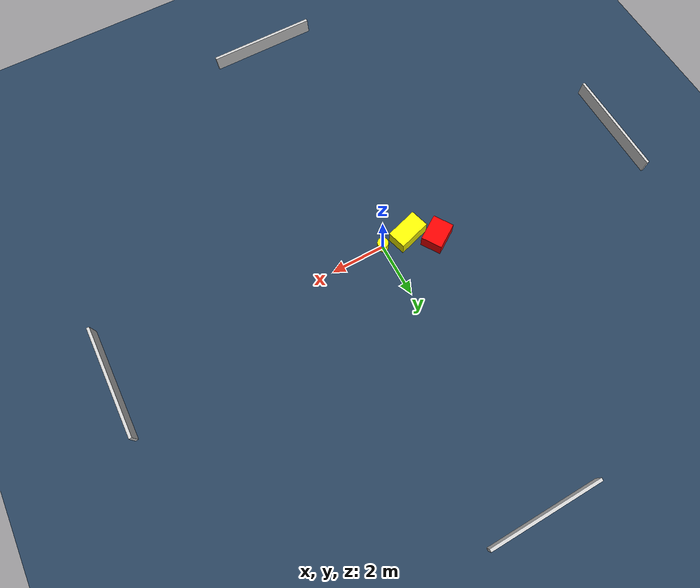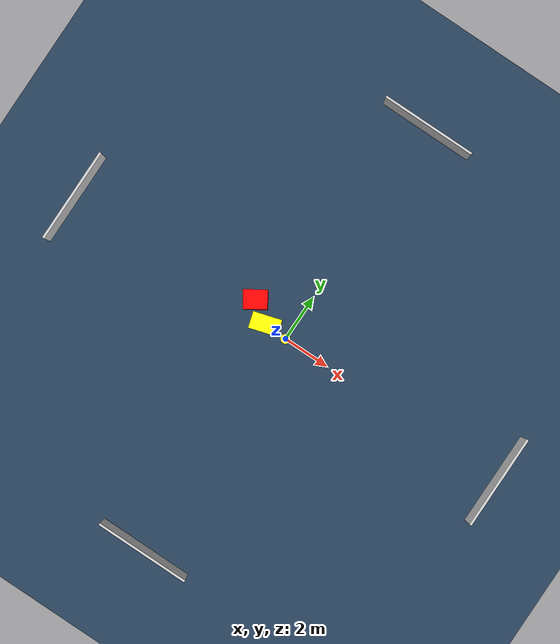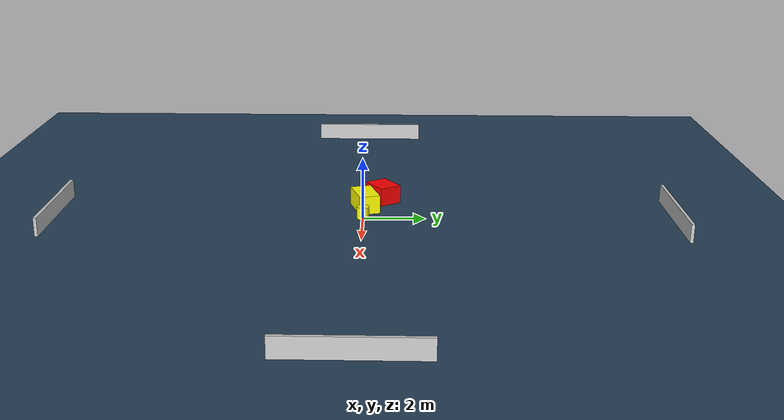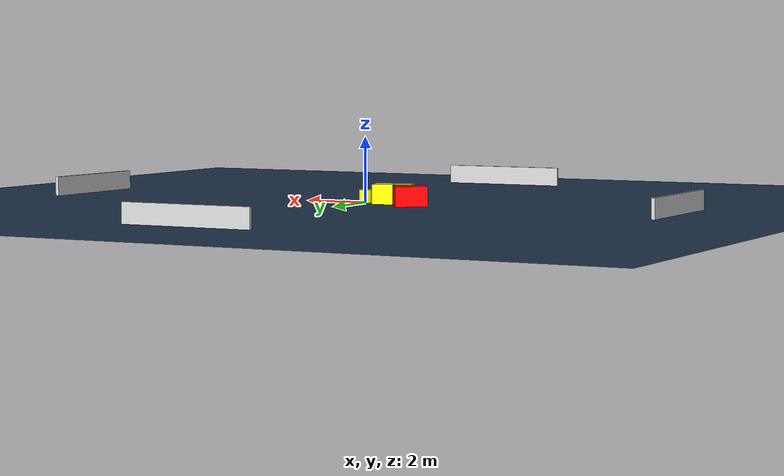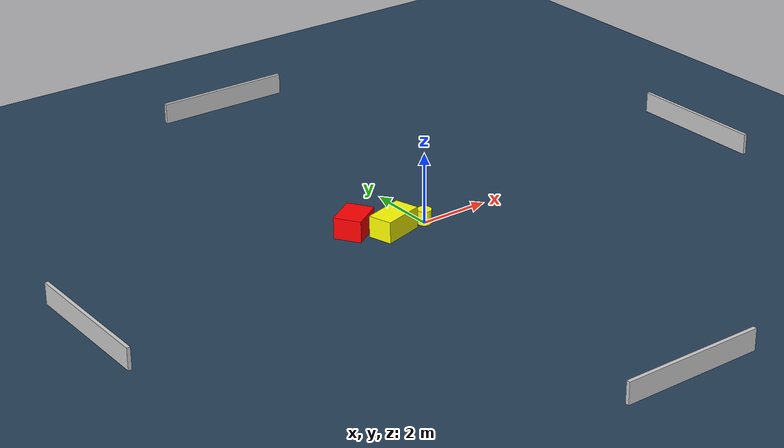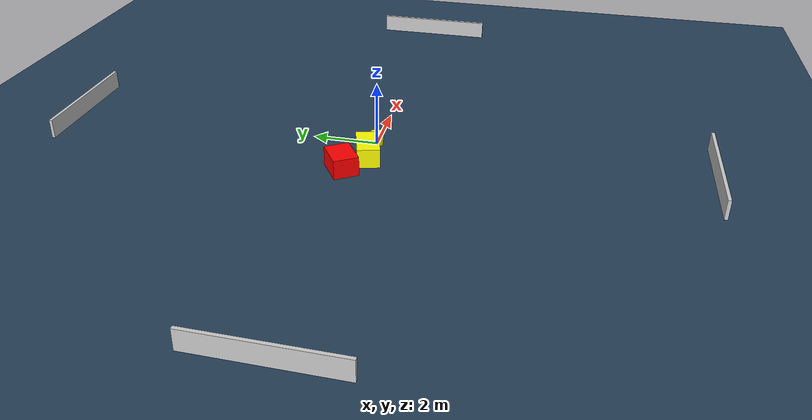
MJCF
<?xml version="1.0" ?>
<mujoco model="generated_environment">
  <option timestep="0.01" integrator="RK4" cone="elliptic"/>
  <default>
    <geom density="1"/>
  </default>
  <asset>
    <texture builtin="gradient" height="3072" name="skybox" rgb1="0.3 0.5 0.7" rgb2="0 0 0" type="skybox" width="512"/>
    <texture builtin="checker" height="300" name="groundplane" rgb1="0.2 0.3 0.4" rgb2="0.1 0.2 0.3" type="2d" width="300"/>
    <material name="groundplane" reflectance="0.2" texrepeat="5 5" texture="groundplane"/>
  </asset>
  <worldbody>
    <light dir="0 0 -1" directional="true" pos="0 0 1.5"/>
    <geom condim="3" friction="0.5 0.005 0.001" material="groundplane" name="floor" pos="0 0 0" size="0 0 0.05" type="plane"/>
    <body name="walls">
      <geom name="wall_1" condim="4" pos="-10.0 0.0 0.3" rgba="0.800000011920929 0.800000011920929 0.800000011920929 1.0" size="0.05 2.0 0.3" type="box"/>
      <geom name="wall_2" condim="4" pos="10.0 0.0 0.3" rgba="0.800000011920929 0.800000011920929 0.800000011920929 1.0" size="0.05 2.0 0.3" type="box"/>
      <geom name="wall_3" condim="4" pos="0.0 -10.0 0.3" rgba="0.800000011920929 0.800000011920929 0.800000011920929 1.0" size="2.0 0.05 0.3" type="box"/>
      <geom name="wall_4" condim="4" pos="0.0 10.0 0.3" rgba="0.800000011920929 0.800000011920929 0.800000011920929 1.0" size="2.0 0.05 0.3" type="box"/>
    </body>
    <body name="robot">
      <joint name="joint_x" type="slide" pos="0 0 0" axis="1 0 0"/>
      <joint name="joint_y" type="slide" pos="0 0 0" axis="0 1 0"/>
      <geom name="robot" type="cylinder" pos="0.0 0.0 0.2" size="0.2 0.2 0.0" mass="5.0" friction="1.0 0.005 0.0001" condim="4" rgba="1.0 1.0 0.0 1.0"/>
    </body>
    <body name="obstacle_1_movable">
      <geom name="obstacle_1_movable" condim="4" pos="-0.9803915587642531 0.04610857179947612 0.3" euler="0 0 16.527970460965705" friction="0.0 0.005 0.001" rgba="1.0 1.0 0.0 1.0" size="0.5930427559377927 0.3424261214920724 0.3" type="box" mass="0.1"/>
      <joint type="free"/>
    </body>
    <body name="obstacle_2_static">
      <geom name="obstacle_2_static" condim="4" pos="-1.8345877110254132 0.6265296128200698 0.3" euler="0 0 213.02615076994883" friction="0.0 0.005 0.001" rgba="1.0 0.0 0.0 1.0" size="0.48355210124706627 0.38295229763692207 0.3" type="box"/>
    </body>
  </worldbody>
  <actuator>
    <motor name="actuator_x" joint="joint_x" gear="1" ctrlrange="-1 1"/>
    <motor name="actuator_y" joint="joint_y" gear="1" ctrlrange="-1 1"/>
  </actuator>
</mujoco>
